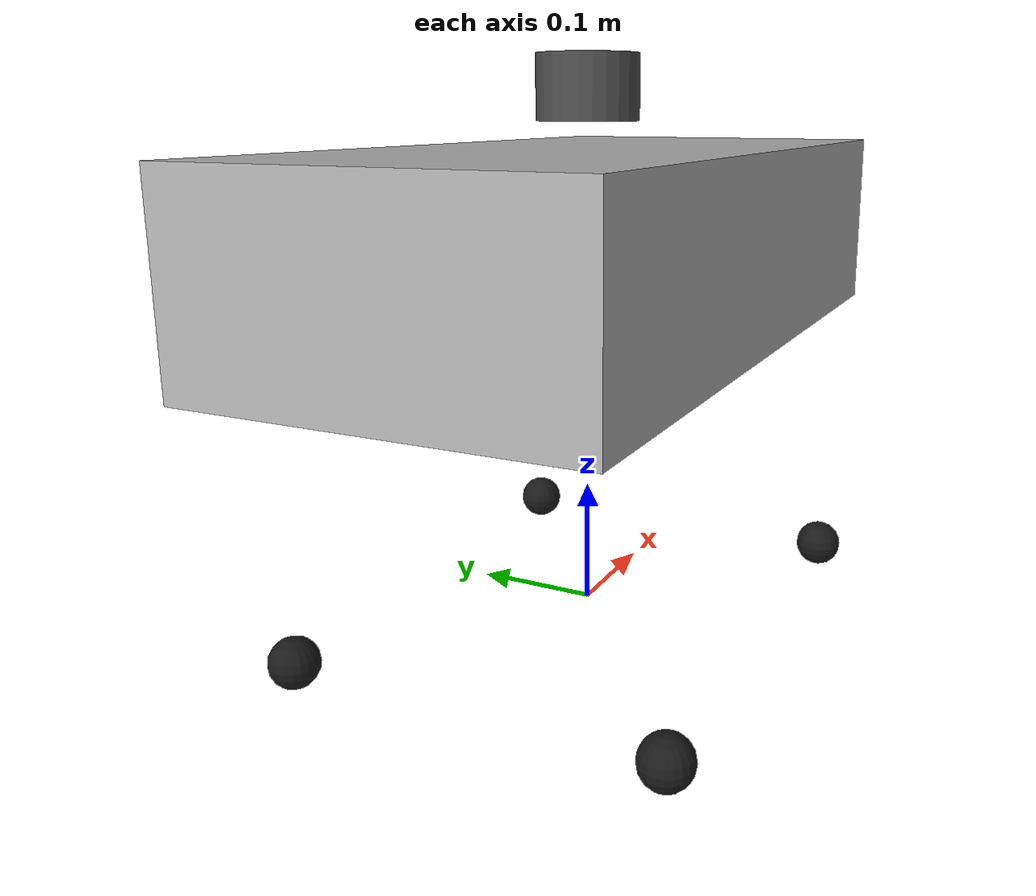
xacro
<?xml version="1.0"?>
<robot xmlns:xacro="http://www.ros.org/wiki/xacro" name="unitree_go2_nav">

  <!--
    Unitree Go2 导航配置
    在官方 Go2 URDF 基础上添加 Mid360 LiDAR + IMU

    依赖: unitree_ros2 包中的 go2_description
    使用方式: 将此文件作为顶层 xacro，include 官方描述文件
  -->

  <!--
    注意：实际使用时需要 include 官方 Go2 URDF
    这里提供传感器挂载的模板

    官方仓库: https://github.com/unitreerobotics/unitree_ros2
    替代方案: https://github.com/Unitree-Go2-Robot/go2_robot
  -->

  <xacro:include filename="$(find pnc_nav_simulation)/urdf/sensors/livox_mid360.urdf.xacro"/>
  <xacro:include filename="$(find pnc_nav_simulation)/urdf/sensors/imu.urdf.xacro"/>

  <!-- 临时占位：简化的 Go2 机体模型（用于框架验证） -->
  <link name="base_footprint"/>

  <link name="base_link">
    <visual>
      <geometry>
        <box size="0.6 0.3 0.15"/>
      </geometry>
      <material name="silver">
        <color rgba="0.7 0.7 0.7 1.0"/>
      </material>
    </visual>
    <collision>
      <geometry>
        <box size="0.6 0.3 0.15"/>
      </geometry>
    </collision>
    <inertial>
      <mass value="12.0"/>
      <inertia ixx="0.1" ixy="0" ixz="0" iyy="0.3" iyz="0" izz="0.35"/>
    </inertial>
  </link>

  <joint name="base_footprint_joint" type="fixed">
    <parent link="base_footprint"/>
    <child link="base_link"/>
    <origin xyz="0 0 0.3" rpy="0 0 0"/>
  </joint>

  <!-- 四条腿的简化表示 -->
  <xacro:macro name="leg_placeholder" params="name x y">
    <link name="${name}_foot">
      <visual>
        <geometry><sphere radius="0.02"/></geometry>
        <material name="black"><color rgba="0.1 0.1 0.1 1.0"/></material>
      </visual>
      <inertial>
        <mass value="0.1"/>
        <inertia ixx="0.00001" ixy="0" ixz="0" iyy="0.00001" iyz="0" izz="0.00001"/>
      </inertial>
    </link>
    <joint name="${name}_foot_joint" type="fixed">
      <parent link="base_link"/>
      <child link="${name}_foot"/>
      <origin xyz="${x} ${y} -0.3" rpy="0 0 0"/>
    </joint>
  </xacro:macro>

  <xacro:leg_placeholder name="FL" x="0.2" y="0.15"/>
  <xacro:leg_placeholder name="FR" x="0.2" y="-0.15"/>
  <xacro:leg_placeholder name="RL" x="-0.2" y="0.15"/>
  <xacro:leg_placeholder name="RR" x="-0.2" y="-0.15"/>

  <!-- 传感器：Livox Mid360 (安装在背部) -->
  <xacro:livox_mid360
    parent_link="base_link"
    xyz="0 0 0.12"
    rpy="0 0 0"
    topic="/livox/pointcloud"
    frame="livox_frame"/>

  <!-- 传感器：IMU (机体中心) -->
  <xacro:imu_sensor
    parent_link="base_link"
    xyz="0 0 0"
    rpy="0 0 0"
    topic="/imu"
    frame="imu_link"
    update_rate="500"/>

  <!--
    Gazebo 控制插件
    Phase 1: 使用 planar_move 插件模拟全向移动（简化）
    Phase 4: 替换为 RL 步态控制器
  -->
  <gazebo>
    <plugin name="planar_move_controller" filename="libgazebo_ros_planar_move.so">
      <ros>
        <remapping>cmd_vel:=cmd_vel</remapping>
        <remapping>odom:=odom</remapping>
      </ros>
      <odometry_frame>odom</odometry_frame>
      <robot_base_frame>base_footprint</robot_base_frame>
      <publish_odom>true</publish_odom>
      <publish_odom_tf>true</publish_odom_tf>
      <update_rate>50.0</update_rate>
    </plugin>
  </gazebo>

</robot>

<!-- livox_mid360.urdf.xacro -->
<robot xmlns:xacro="http://www.ros.org/wiki/xacro" name="livox_mid360">

  <!--
    Livox Mid360 LiDAR 传感器 Xacro 宏
    非重复扫描模式，360° FOV，40m量程
    使用 livox_laser_simulation_ros2 插件仿真
  -->

  <xacro:macro name="livox_mid360" params="parent_link:=base_link xyz:='0 0 0.2' rpy:='0 0 0' topic:=/livox/pointcloud frame:=livox_frame">

    <!-- Mid360 Link -->
    <link name="${frame}">
      <visual>
        <geometry>
          <cylinder radius="0.04" length="0.05"/>
        </geometry>
        <material name="dark_grey">
          <color rgba="0.3 0.3 0.3 1.0"/>
        </material>
      </visual>
      <collision>
        <geometry>
          <cylinder radius="0.04" length="0.05"/>
        </geometry>
      </collision>
      <inertial>
        <mass value="0.265"/>
        <inertia ixx="0.0001" ixy="0" ixz="0" iyy="0.0001" iyz="0" izz="0.0001"/>
      </inertial>
    </link>

    <!-- Joint to parent -->
    <joint name="${frame}_joint" type="fixed">
      <parent link="${parent_link}"/>
      <child link="${frame}"/>
      <origin xyz="${xyz}" rpy="${rpy}"/>
    </joint>

    <!-- Gazebo Livox Plugin -->
    <!--
      使用 livox_laser_simulation_ros2 插件
      如果该插件不可用，回退到标准 ray sensor
    -->
    <gazebo reference="${frame}">
      <sensor type="ray" name="livox_mid360">
        <pose>0 0 0 0 0 0</pose>
        <visualize>false</visualize>
        <update_rate>10</update_rate>
        <ray>
          <scan>
            <horizontal>
              <samples>360</samples>
              <resolution>1</resolution>
              <min_angle>-3.14159</min_angle>
              <max_angle>3.14159</max_angle>
            </horizontal>
            <vertical>
              <samples>32</samples>
              <resolution>1</resolution>
              <min_angle>-0.1222</min_angle>
              <max_angle>0.9076</max_angle>
            </vertical>
          </scan>
          <range>
            <min>0.1</min>
            <max>40.0</max>
            <resolution>0.01</resolution>
          </range>
          <noise>
            <type>gaussian</type>
            <mean>0.0</mean>
            <stddev>0.01</stddev>
          </noise>
        </ray>
        <plugin name="gazebo_ros_livox" filename="libgazebo_ros_ray_sensor.so">
          <ros>
            <remapping>~/out:=${topic}</remapping>
          </ros>
          <output_type>sensor_msgs/PointCloud2</output_type>
          <frame_name>${frame}</frame_name>
          <min_intensity>0</min_intensity>
        </plugin>
      </sensor>
    </gazebo>

  </xacro:macro>

</robot>

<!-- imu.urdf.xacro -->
<robot xmlns:xacro="http://www.ros.org/wiki/xacro" name="imu_sensor">

  <!--
    IMU 传感器 Xacro 宏
    6轴 IMU (加速度计 + 陀螺仪)
  -->

  <xacro:macro name="imu_sensor" params="parent_link:=base_link xyz:='0 0 0.1' rpy:='0 0 0' topic:=/imu frame:=imu_link update_rate:=200">

    <!-- IMU Link -->
    <link name="${frame}">
      <visual>
        <geometry>
          <box size="0.02 0.02 0.01"/>
        </geometry>
        <material name="blue">
          <color rgba="0.0 0.0 0.8 1.0"/>
        </material>
      </visual>
      <inertial>
        <mass value="0.01"/>
        <inertia ixx="0.00001" ixy="0" ixz="0" iyy="0.00001" iyz="0" izz="0.00001"/>
      </inertial>
    </link>

    <!-- Joint to parent -->
    <joint name="${frame}_joint" type="fixed">
      <parent link="${parent_link}"/>
      <child link="${frame}"/>
      <origin xyz="${xyz}" rpy="${rpy}"/>
    </joint>

    <!-- Gazebo IMU Plugin -->
    <gazebo reference="${frame}">
      <sensor type="imu" name="imu_sensor">
        <always_on>true</always_on>
        <update_rate>${update_rate}</update_rate>
        <imu>
          <angular_velocity>
            <x><noise type="gaussian"><mean>0.0</mean><stddev>0.0002</stddev></noise></x>
            <y><noise type="gaussian"><mean>0.0</mean><stddev>0.0002</stddev></noise></y>
            <z><noise type="gaussian"><mean>0.0</mean><stddev>0.0002</stddev></noise></z>
          </angular_velocity>
          <linear_acceleration>
            <x><noise type="gaussian"><mean>0.0</mean><stddev>0.017</stddev></noise></x>
            <y><noise type="gaussian"><mean>0.0</mean><stddev>0.017</stddev></noise></y>
            <z><noise type="gaussian"><mean>0.0</mean><stddev>0.017</stddev></noise></z>
          </linear_acceleration>
        </imu>
        <plugin name="gazebo_ros_imu" filename="libgazebo_ros_imu_sensor.so">
          <ros>
            <remapping>~/out:=${topic}</remapping>
          </ros>
          <frame_name>${frame}</frame_name>
          <initial_orientation_as_reference>false</initial_orientation_as_reference>
        </plugin>
      </sensor>
    </gazebo>

  </xacro:macro>

</robot>
